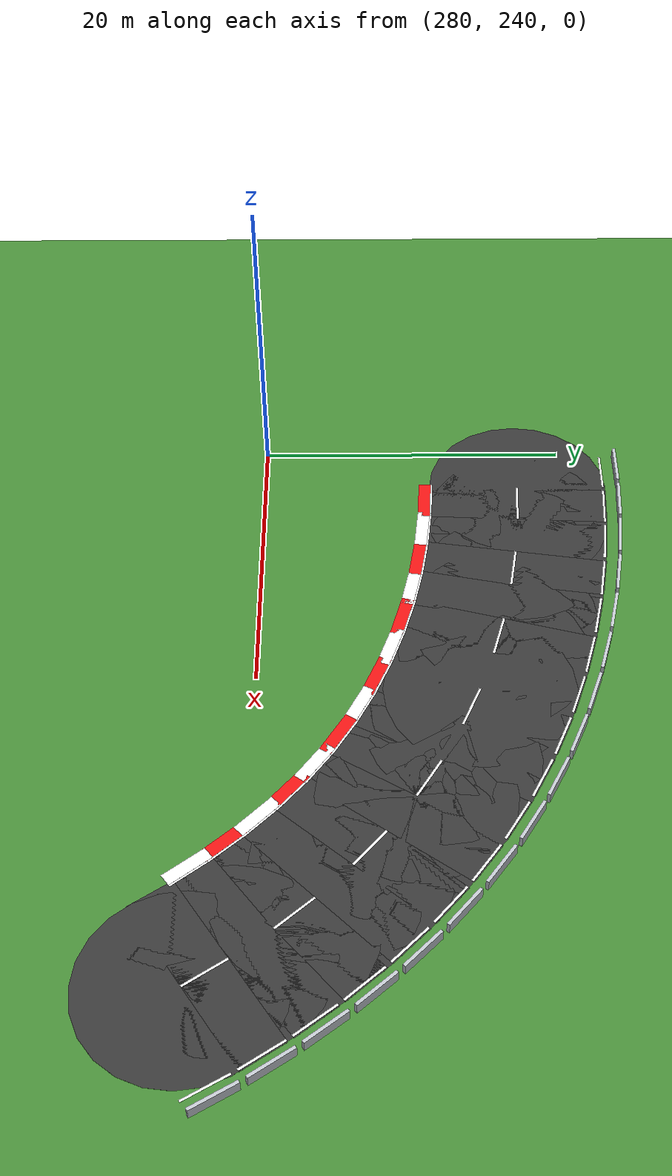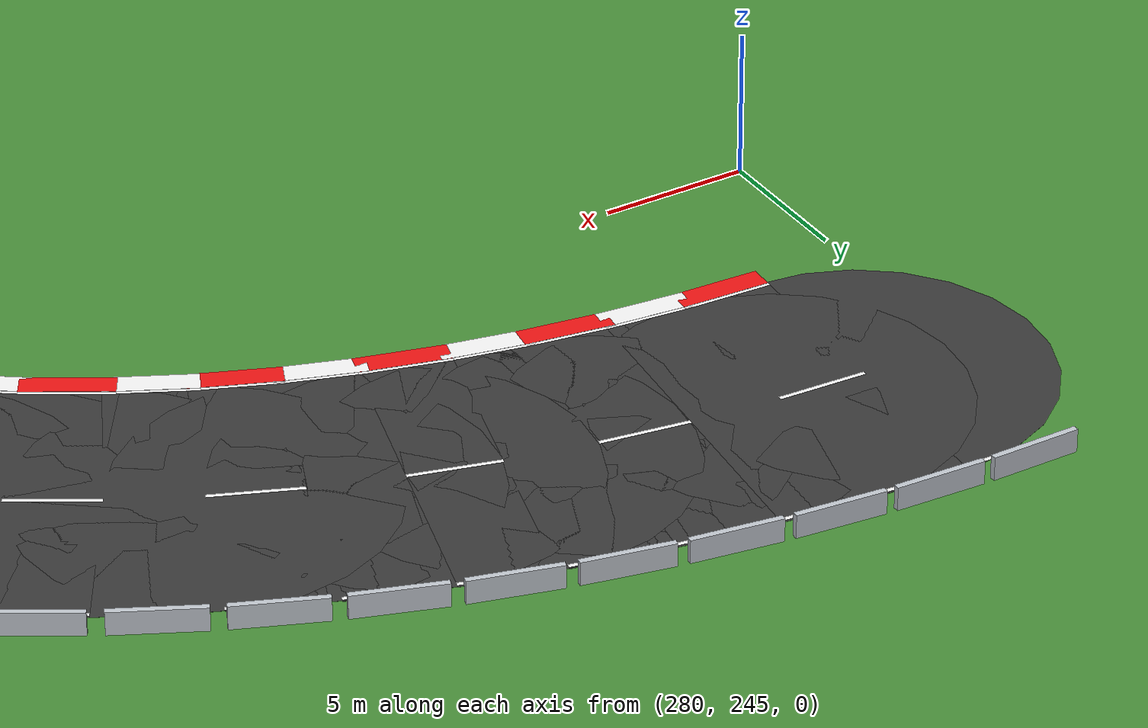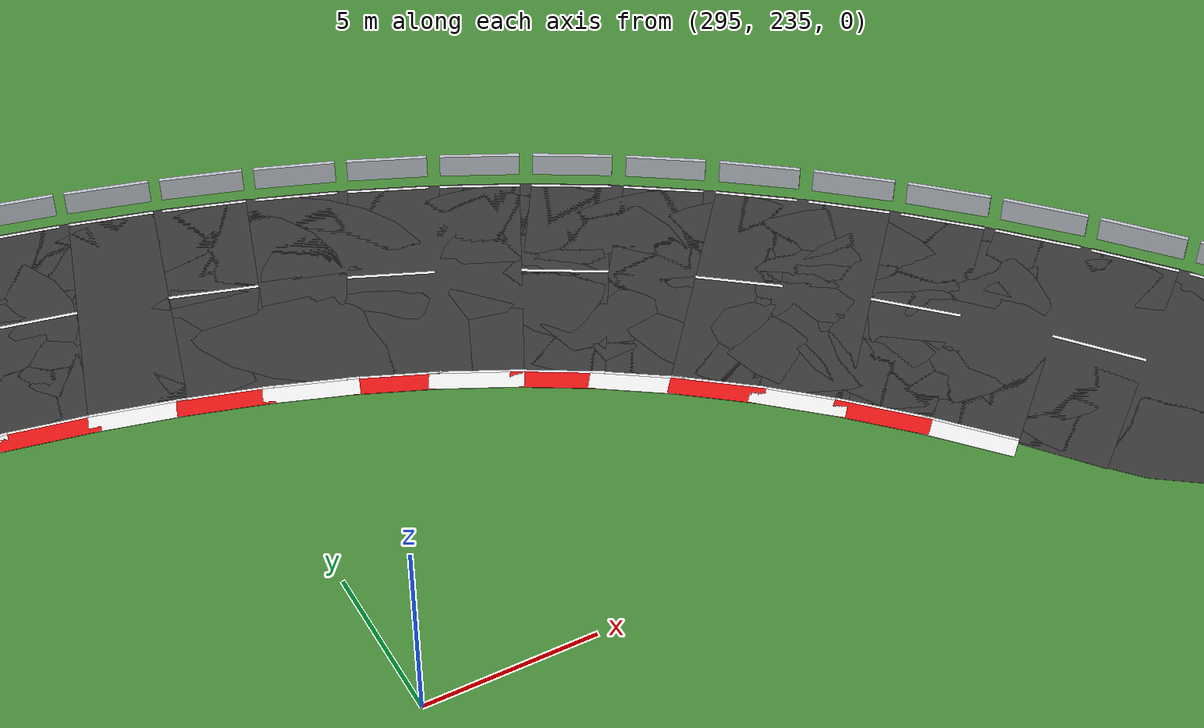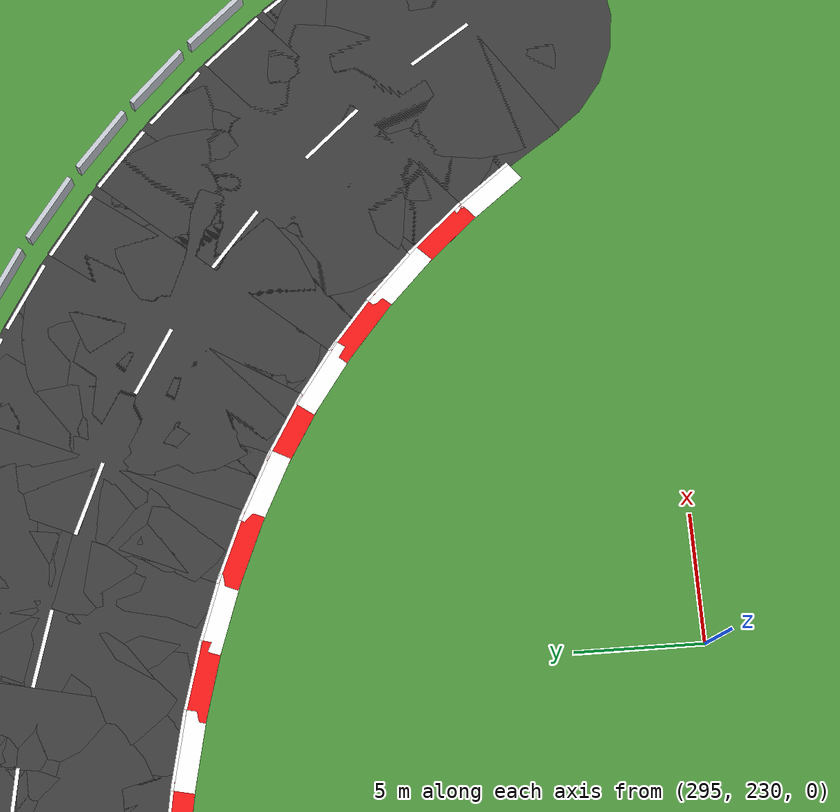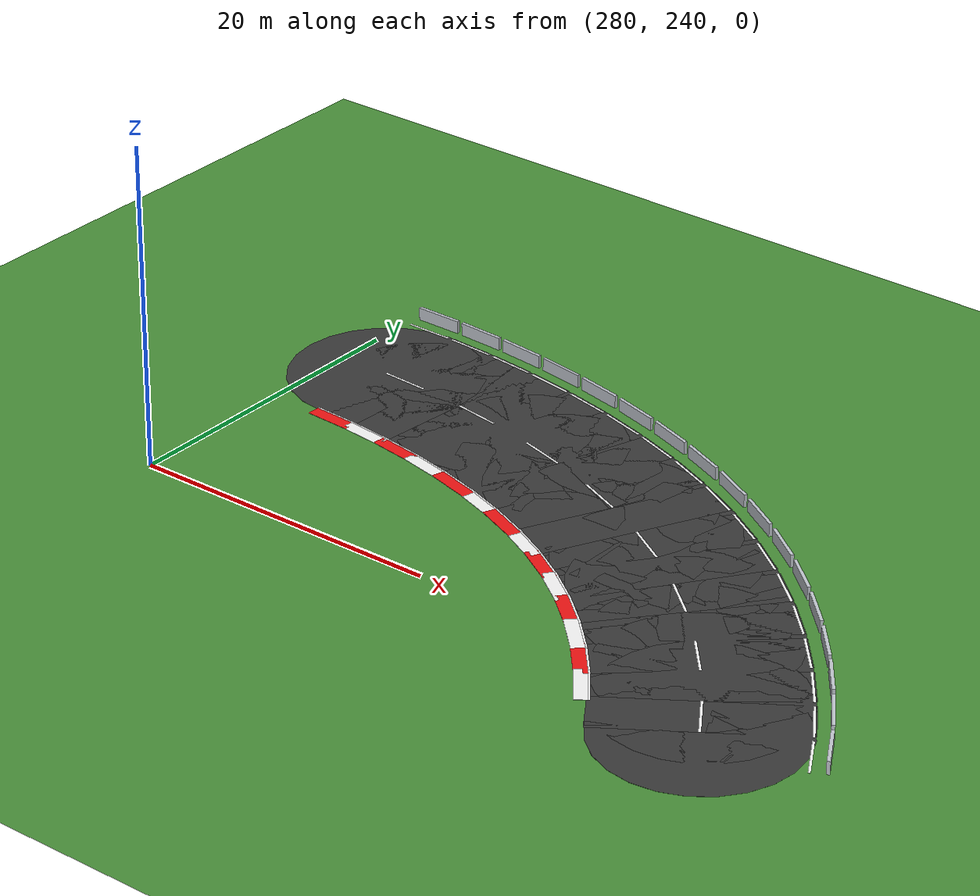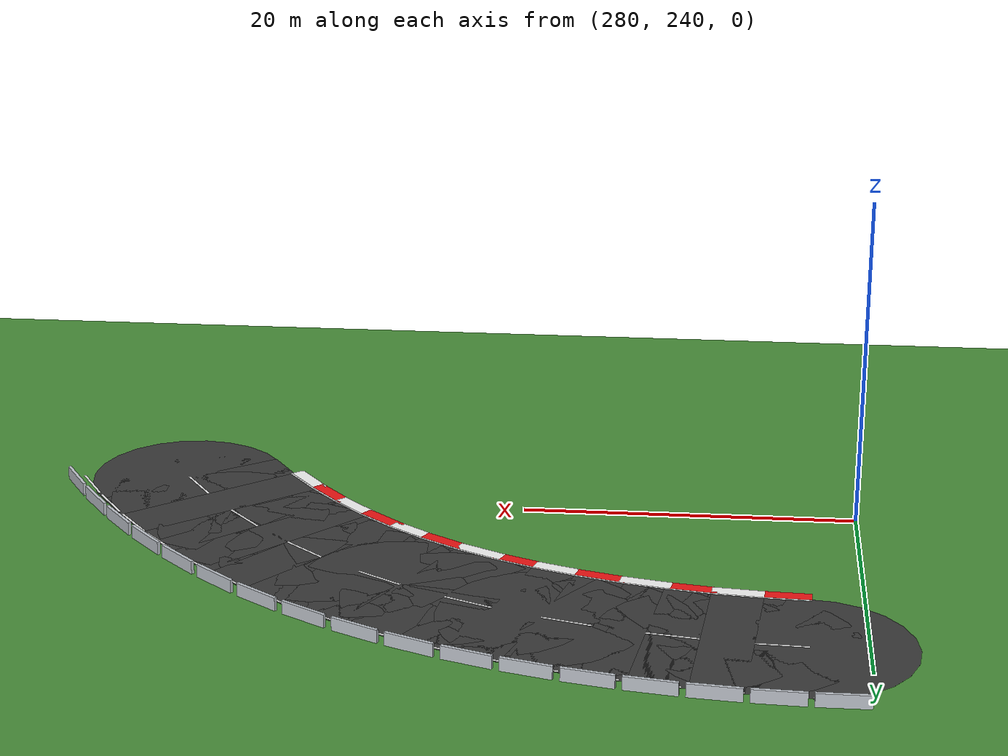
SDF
<sdf version="1.6">
 <world name="sem_silesia_ring_2026">
  <model name="ground_plane">
   <static>true</static>
   <link name="link">
    <collision name="collision">
     <geometry><plane><normal>0 0 1</normal><size>1200 1200</size></plane></geometry>
     <surface><friction><ode><mu>0.6</mu><mu2>0.6</mu2></ode></friction></surface>
    </collision>
    <visual name="visual">
     <geometry><plane><normal>0 0 1</normal><size>1200 1200</size></plane></geometry>
     <material><ambient>0.28 0.55 0.22 1</ambient><diffuse>0.28 0.55 0.22 1</diffuse></material>
    </visual>
   </link>
  </model>
  <model name="wl_R_s197">
   <static>true</static>
   <pose>327.0546 238.4590 0.0070 0 0 2.1022</pose>
   <link name="link">
    <visual name="v">
     <geometry><box><size>3.0021 0.1500 0.0080</size></box></geometry>
     <material><ambient>0.95 0.95 0.95 1</ambient><diffuse>0.95 0.95 0.95 1</diffuse></material>
    </visual>
   </link>
  </model>
  <model name="arm_outR_197">
   <static>true</static>
   <pose>327.8736 238.9404 0.4000 0 0 2.1022</pose>
   <link name="link">
    <visual name="v">
     <geometry><box><size>3.0021 0.2000 0.8000</size></box></geometry>
     <material><ambient>0.75 0.77 0.80 1</ambient><diffuse>0.75 0.77 0.80 1</diffuse></material>
    </visual>
    <collision name="c">
     <geometry><box><size>3.0021 0.2000 0.8000</size></box></geometry>
     <surface><friction><ode><mu>0.8</mu><mu2>0.8</mu2></ode></friction></surface>
    </collision>
   </link>
  </model>
  <model name="road_s198">
   <static>true</static>
   <pose>320.4113 238.0326 0.0030 0 0 2.1643</pose>
   <link name="link">
    <visual name="v">
     <geometry><box><size>3.0020 12.0000 0.0060</size></box></geometry>
     <material><ambient>0.22 0.22 0.22 1</ambient><diffuse>0.22 0.22 0.22 1</diffuse></material>
    </visual>
    <collision name="c">
     <geometry><box><size>3.0020 12.0000 0.0060</size></box></geometry>
     <surface><friction><ode><mu>0.9</mu><mu2>0.9</mu2></ode></friction></surface>
    </collision>
   </link>
  </model>
  <model name="road_jnt198">
   <static>true</static>
   <pose>321.2508 236.7883 0.0030 0 0 0</pose>
   <link name="link">
    <visual name="v">
     <geometry><cylinder><radius>6.0000</radius><length>0.0060</length></cylinder></geometry>
     <material><ambient>0.22 0.22 0.22 1</ambient><diffuse>0.22 0.22 0.22 1</diffuse></material>
    </visual>
    <collision name="c">
     <geometry><cylinder><radius>6.0000</radius><length>0.0060</length></cylinder></geometry>
     <surface><friction><ode><mu>0.9</mu><mu2>0.9</mu2></ode></friction></surface>
    </collision>
   </link>
  </model>
  <model name="wl_R_s198">
   <static>true</static>
   <pose>325.2608 241.3045 0.0070 0 0 2.1643</pose>
   <link name="link">
    <visual name="v">
     <geometry><box><size>3.0020 0.1500 0.0080</size></box></geometry>
     <material><ambient>0.95 0.95 0.95 1</ambient><diffuse>0.95 0.95 0.95 1</diffuse></material>
    </visual>
   </link>
  </model>
  <model name="cd_s198">
   <static>true</static>
   <pose>320.4113 238.0326 0.0070 0 0 2.1643</pose>
   <link name="link">
    <visual name="v">
     <geometry><box><size>3.0020 0.1500 0.0080</size></box></geometry>
     <material><ambient>0.95 0.95 0.95 1</ambient><diffuse>0.95 0.95 0.95 1</diffuse></material>
    </visual>
   </link>
  </model>
  <model name="arm_outR_198">
   <static>true</static>
   <pose>326.0483 241.8358 0.4000 0 0 2.1643</pose>
   <link name="link">
    <visual name="v">
     <geometry><box><size>3.0020 0.2000 0.8000</size></box></geometry>
     <material><ambient>0.75 0.77 0.80 1</ambient><diffuse>0.75 0.77 0.80 1</diffuse></material>
    </visual>
    <collision name="c">
     <geometry><box><size>3.0020 0.2000 0.8000</size></box></geometry>
     <surface><friction><ode><mu>0.8</mu><mu2>0.8</mu2></ode></friction></surface>
    </collision>
   </link>
  </model>
  <model name="road_s199">
   <static>true</static>
   <pose>318.6545 240.4650 0.0030 0 0 2.2283</pose>
   <link name="link">
    <visual name="v">
     <geometry><box><size>3.0020 12.0000 0.0060</size></box></geometry>
     <material><ambient>0.22 0.22 0.22 1</ambient><diffuse>0.22 0.22 0.22 1</diffuse></material>
    </visual>
    <collision name="c">
     <geometry><box><size>3.0020 12.0000 0.0060</size></box></geometry>
     <surface><friction><ode><mu>0.9</mu><mu2>0.9</mu2></ode></friction></surface>
    </collision>
   </link>
  </model>
  <model name="road_jnt199">
   <static>true</static>
   <pose>319.5718 239.2769 0.0030 0 0 0</pose>
   <link name="link">
    <visual name="v">
     <geometry><cylinder><radius>6.0000</radius><length>0.0060</length></cylinder></geometry>
     <material><ambient>0.22 0.22 0.22 1</ambient><diffuse>0.22 0.22 0.22 1</diffuse></material>
    </visual>
    <collision name="c">
     <geometry><cylinder><radius>6.0000</radius><length>0.0060</length></cylinder></geometry>
     <surface><friction><ode><mu>0.9</mu><mu2>0.9</mu2></ode></friction></surface>
    </collision>
   </link>
  </model>
  <model name="wl_L_s199">
   <static>true</static>
   <pose>314.0240 236.8899 0.0070 0 0 2.2283</pose>
   <link name="link">
    <visual name="v">
     <geometry><box><size>3.0020 0.1500 0.0080</size></box></geometry>
     <material><ambient>0.95 0.95 0.95 1</ambient><diffuse>0.95 0.95 0.95 1</diffuse></material>
    </visual>
   </link>
  </model>
  <model name="wl_R_s199">
   <static>true</static>
   <pose>323.2849 244.0401 0.0070 0 0 2.2283</pose>
   <link name="link">
    <visual name="v">
     <geometry><box><size>3.0020 0.1500 0.0080</size></box></geometry>
     <material><ambient>0.95 0.95 0.95 1</ambient><diffuse>0.95 0.95 0.95 1</diffuse></material>
    </visual>
   </link>
  </model>
  <model name="kerb_L_199">
   <static>true</static>
   <pose>313.6678 236.6149 0.0120 0 0 2.2283</pose>
   <link name="link">
    <visual name="v">
     <geometry><box><size>3.0020 0.8000 0.0160</size></box></geometry>
     <material><ambient>0.95 0.95 0.95 1</ambient><diffuse>0.95 0.95 0.95 1</diffuse></material>
    </visual>
   </link>
  </model>
  <model name="arm_outR_199">
   <static>true</static>
   <pose>324.0369 244.6207 0.4000 0 0 2.2283</pose>
   <link name="link">
    <visual name="v">
     <geometry><box><size>3.0020 0.2000 0.8000</size></box></geometry>
     <material><ambient>0.75 0.77 0.80 1</ambient><diffuse>0.75 0.77 0.80 1</diffuse></material>
    </visual>
    <collision name="c">
     <geometry><box><size>3.0020 0.2000 0.8000</size></box></geometry>
     <surface><friction><ode><mu>0.8</mu><mu2>0.8</mu2></ode></friction></surface>
    </collision>
   </link>
  </model>
  <model name="road_s200">
   <static>true</static>
   <pose>316.7428 242.7775 0.0030 0 0 2.2949</pose>
   <link name="link">
    <visual name="v">
     <geometry><box><size>3.0020 12.0000 0.0060</size></box></geometry>
     <material><ambient>0.22 0.22 0.22 1</ambient><diffuse>0.22 0.22 0.22 1</diffuse></material>
    </visual>
    <collision name="c">
     <geometry><box><size>3.0020 12.0000 0.0060</size></box></geometry>
     <surface><friction><ode><mu>0.9</mu><mu2>0.9</mu2></ode></friction></surface>
    </collision>
   </link>
  </model>
  <model name="road_jnt200">
   <static>true</static>
   <pose>317.7372 241.6531 0.0030 0 0 0</pose>
   <link name="link">
    <visual name="v">
     <geometry><cylinder><radius>6.0000</radius><length>0.0060</length></cylinder></geometry>
     <material><ambient>0.22 0.22 0.22 1</ambient><diffuse>0.22 0.22 0.22 1</diffuse></material>
    </visual>
    <collision name="c">
     <geometry><cylinder><radius>6.0000</radius><length>0.0060</length></cylinder></geometry>
     <surface><friction><ode><mu>0.9</mu><mu2>0.9</mu2></ode></friction></surface>
    </collision>
   </link>
  </model>
  <model name="wl_L_s200">
   <static>true</static>
   <pose>312.3606 238.9021 0.0070 0 0 2.2949</pose>
   <link name="link">
    <visual name="v">
     <geometry><box><size>3.0020 0.1500 0.0080</size></box></geometry>
     <material><ambient>0.95 0.95 0.95 1</ambient><diffuse>0.95 0.95 0.95 1</diffuse></material>
    </visual>
   </link>
  </model>
  <model name="wl_R_s200">
   <static>true</static>
   <pose>321.1250 246.6529 0.0070 0 0 2.2949</pose>
   <link name="link">
    <visual name="v">
     <geometry><box><size>3.0020 0.1500 0.0080</size></box></geometry>
     <material><ambient>0.95 0.95 0.95 1</ambient><diffuse>0.95 0.95 0.95 1</diffuse></material>
    </visual>
   </link>
  </model>
  <model name="cd_s200">
   <static>true</static>
   <pose>316.7428 242.7775 0.0070 0 0 2.2949</pose>
   <link name="link">
    <visual name="v">
     <geometry><box><size>3.0020 0.1500 0.0080</size></box></geometry>
     <material><ambient>0.95 0.95 0.95 1</ambient><diffuse>0.95 0.95 0.95 1</diffuse></material>
    </visual>
   </link>
  </model>
  <model name="kerb_L_200">
   <static>true</static>
   <pose>312.0236 238.6039 0.0120 0 0 2.2949</pose>
   <link name="link">
    <visual name="v">
     <geometry><box><size>3.0020 0.8000 0.0160</size></box></geometry>
     <material><ambient>0.92 0.08 0.08 1</ambient><diffuse>0.92 0.08 0.08 1</diffuse></material>
    </visual>
   </link>
  </model>
  <model name="arm_outR_200">
   <static>true</static>
   <pose>321.8366 247.2823 0.4000 0 0 2.2949</pose>
   <link name="link">
    <visual name="v">
     <geometry><box><size>3.0020 0.2000 0.8000</size></box></geometry>
     <material><ambient>0.75 0.77 0.80 1</ambient><diffuse>0.75 0.77 0.80 1</diffuse></material>
    </visual>
    <collision name="c">
     <geometry><box><size>3.0020 0.2000 0.8000</size></box></geometry>
     <surface><friction><ode><mu>0.8</mu><mu2>0.8</mu2></ode></friction></surface>
    </collision>
   </link>
  </model>
  <model name="road_s201">
   <static>true</static>
   <pose>314.6779 244.9538 0.0030 0 0 2.3650</pose>
   <link name="link">
    <visual name="v">
     <geometry><box><size>3.0019 12.0000 0.0060</size></box></geometry>
     <material><ambient>0.22 0.22 0.22 1</ambient><diffuse>0.22 0.22 0.22 1</diffuse></material>
    </visual>
    <collision name="c">
     <geometry><box><size>3.0019 12.0000 0.0060</size></box></geometry>
     <surface><friction><ode><mu>0.9</mu><mu2>0.9</mu2></ode></friction></surface>
    </collision>
   </link>
  </model>
  <model name="road_jnt201">
   <static>true</static>
   <pose>315.7485 243.9019 0.0030 0 0 0</pose>
   <link name="link">
    <visual name="v">
     <geometry><cylinder><radius>6.0000</radius><length>0.0060</length></cylinder></geometry>
     <material><ambient>0.22 0.22 0.22 1</ambient><diffuse>0.22 0.22 0.22 1</diffuse></material>
    </visual>
    <collision name="c">
     <geometry><cylinder><radius>6.0000</radius><length>0.0060</length></cylinder></geometry>
     <surface><friction><ode><mu>0.9</mu><mu2>0.9</mu2></ode></friction></surface>
    </collision>
   </link>
  </model>
  <model name="wl_L_s201">
   <static>true</static>
   <pose>310.5777 240.7812 0.0070 0 0 2.3650</pose>
   <link name="link">
    <visual name="v">
     <geometry><box><size>3.0019 0.1500 0.0080</size></box></geometry>
     <material><ambient>0.95 0.95 0.95 1</ambient><diffuse>0.95 0.95 0.95 1</diffuse></material>
    </visual>
   </link>
  </model>
  <model name="wl_R_s201">
   <static>true</static>
   <pose>318.7781 249.1265 0.0070 0 0 2.3650</pose>
   <link name="link">
    <visual name="v">
     <geometry><box><size>3.0019 0.1500 0.0080</size></box></geometry>
     <material><ambient>0.95 0.95 0.95 1</ambient><diffuse>0.95 0.95 0.95 1</diffuse></material>
    </visual>
   </link>
  </model>
  <model name="kerb_L_201">
   <static>true</static>
   <pose>310.2623 240.4602 0.0120 0 0 2.3650</pose>
   <link name="link">
    <visual name="v">
     <geometry><box><size>3.0019 0.8000 0.0160</size></box></geometry>
     <material><ambient>0.95 0.95 0.95 1</ambient><diffuse>0.95 0.95 0.95 1</diffuse></material>
    </visual>
   </link>
  </model>
  <model name="arm_outR_201">
   <static>true</static>
   <pose>319.4439 249.8041 0.4000 0 0 2.3650</pose>
   <link name="link">
    <visual name="v">
     <geometry><box><size>3.0019 0.2000 0.8000</size></box></geometry>
     <material><ambient>0.75 0.77 0.80 1</ambient><diffuse>0.75 0.77 0.80 1</diffuse></material>
    </visual>
    <collision name="c">
     <geometry><box><size>3.0019 0.2000 0.8000</size></box></geometry>
     <surface><friction><ode><mu>0.8</mu><mu2>0.8</mu2></ode></friction></surface>
    </collision>
   </link>
  </model>
  <model name="road_s202">
   <static>true</static>
   <pose>312.4618 246.9756 0.0030 0 0 2.4391</pose>
   <link name="link">
    <visual name="v">
     <geometry><box><size>3.0018 12.0000 0.0060</size></box></geometry>
     <material><ambient>0.22 0.22 0.22 1</ambient><diffuse>0.22 0.22 0.22 1</diffuse></material>
    </visual>
    <collision name="c">
     <geometry><box><size>3.0018 12.0000 0.0060</size></box></geometry>
     <surface><friction><ode><mu>0.9</mu><mu2>0.9</mu2></ode></friction></surface>
    </collision>
   </link>
  </model>
  <model name="road_jnt202">
   <static>true</static>
   <pose>313.6073 246.0058 0.0030 0 0 0</pose>
   <link name="link">
    <visual name="v">
     <geometry><cylinder><radius>6.0000</radius><length>0.0060</length></cylinder></geometry>
     <material><ambient>0.22 0.22 0.22 1</ambient><diffuse>0.22 0.22 0.22 1</diffuse></material>
    </visual>
    <collision name="c">
     <geometry><cylinder><radius>6.0000</radius><length>0.0060</length></cylinder></geometry>
     <surface><friction><ode><mu>0.9</mu><mu2>0.9</mu2></ode></friction></surface>
    </collision>
   </link>
  </model>
  <model name="wl_L_s202">
   <static>true</static>
   <pose>308.6820 242.5107 0.0070 0 0 2.4391</pose>
   <link name="link">
    <visual name="v">
     <geometry><box><size>3.0018 0.1500 0.0080</size></box></geometry>
     <material><ambient>0.95 0.95 0.95 1</ambient><diffuse>0.95 0.95 0.95 1</diffuse></material>
    </visual>
   </link>
  </model>
  <model name="wl_R_s202">
   <static>true</static>
   <pose>316.2415 251.4405 0.0070 0 0 2.4391</pose>
   <link name="link">
    <visual name="v">
     <geometry><box><size>3.0018 0.1500 0.0080</size></box></geometry>
     <material><ambient>0.95 0.95 0.95 1</ambient><diffuse>0.95 0.95 0.95 1</diffuse></material>
    </visual>
   </link>
  </model>
  <model name="cd_s202">
   <static>true</static>
   <pose>312.4618 246.9756 0.0070 0 0 2.4391</pose>
   <link name="link">
    <visual name="v">
     <geometry><box><size>3.0018 0.1500 0.0080</size></box></geometry>
     <material><ambient>0.95 0.95 0.95 1</ambient><diffuse>0.95 0.95 0.95 1</diffuse></material>
    </visual>
   </link>
  </model>
  <model name="kerb_L_202">
   <static>true</static>
   <pose>308.3912 242.1672 0.0120 0 0 2.4391</pose>
   <link name="link">
    <visual name="v">
     <geometry><box><size>3.0018 0.8000 0.0160</size></box></geometry>
     <material><ambient>0.92 0.08 0.08 1</ambient><diffuse>0.92 0.08 0.08 1</diffuse></material>
    </visual>
   </link>
  </model>
  <model name="arm_outR_202">
   <static>true</static>
   <pose>316.8554 252.1656 0.4000 0 0 2.4391</pose>
   <link name="link">
    <visual name="v">
     <geometry><box><size>3.0018 0.2000 0.8000</size></box></geometry>
     <material><ambient>0.75 0.77 0.80 1</ambient><diffuse>0.75 0.77 0.80 1</diffuse></material>
    </visual>
    <collision name="c">
     <geometry><box><size>3.0018 0.2000 0.8000</size></box></geometry>
     <surface><friction><ode><mu>0.8</mu><mu2>0.8</mu2></ode></friction></surface>
    </collision>
   </link>
  </model>
  <model name="road_s203">
   <static>true</static>
   <pose>310.0981 248.8221 0.0030 0 0 2.5177</pose>
   <link name="link">
    <visual name="v">
     <geometry><box><size>3.0017 12.0000 0.0060</size></box></geometry>
     <material><ambient>0.22 0.22 0.22 1</ambient><diffuse>0.22 0.22 0.22 1</diffuse></material>
    </visual>
    <collision name="c">
     <geometry><box><size>3.0017 12.0000 0.0060</size></box></geometry>
     <surface><friction><ode><mu>0.9</mu><mu2>0.9</mu2></ode></friction></surface>
    </collision>
   </link>
  </model>
  <model name="road_jnt203">
   <static>true</static>
   <pose>311.3162 247.9454 0.0030 0 0 0</pose>
   <link name="link">
    <visual name="v">
     <geometry><cylinder><radius>6.0000</radius><length>0.0060</length></cylinder></geometry>
     <material><ambient>0.22 0.22 0.22 1</ambient><diffuse>0.22 0.22 0.22 1</diffuse></material>
    </visual>
    <collision name="c">
     <geometry><cylinder><radius>6.0000</radius><length>0.0060</length></cylinder></geometry>
     <surface><friction><ode><mu>0.9</mu><mu2>0.9</mu2></ode></friction></surface>
    </collision>
   </link>
  </model>
  <model name="wl_L_s203">
   <static>true</static>
   <pose>306.6807 244.0740 0.0070 0 0 2.5177</pose>
   <link name="link">
    <visual name="v">
     <geometry><box><size>3.0017 0.1500 0.0080</size></box></geometry>
     <material><ambient>0.95 0.95 0.95 1</ambient><diffuse>0.95 0.95 0.95 1</diffuse></material>
    </visual>
   </link>
  </model>
  <model name="wl_R_s203">
   <static>true</static>
   <pose>313.5154 253.5702 0.0070 0 0 2.5177</pose>
   <link name="link">
    <visual name="v">
     <geometry><box><size>3.0017 0.1500 0.0080</size></box></geometry>
     <material><ambient>0.95 0.95 0.95 1</ambient><diffuse>0.95 0.95 0.95 1</diffuse></material>
    </visual>
   </link>
  </model>
  <model name="kerb_L_203">
   <static>true</static>
   <pose>306.4178 243.7088 0.0120 0 0 2.5177</pose>
   <link name="link">
    <visual name="v">
     <geometry><box><size>3.0017 0.8000 0.0160</size></box></geometry>
     <material><ambient>0.95 0.95 0.95 1</ambient><diffuse>0.95 0.95 0.95 1</diffuse></material>
    </visual>
   </link>
  </model>
  <model name="arm_outR_203">
   <static>true</static>
   <pose>314.0704 254.3412 0.4000 0 0 2.5177</pose>
   <link name="link">
    <visual name="v">
     <geometry><box><size>3.0017 0.2000 0.8000</size></box></geometry>
     <material><ambient>0.75 0.77 0.80 1</ambient><diffuse>0.75 0.77 0.80 1</diffuse></material>
    </visual>
    <collision name="c">
     <geometry><box><size>3.0017 0.2000 0.8000</size></box></geometry>
     <surface><friction><ode><mu>0.8</mu><mu2>0.8</mu2></ode></friction></surface>
    </collision>
   </link>
  </model>
  <model name="road_s204">
   <static>true</static>
   <pose>307.5961 250.4764 0.0030 0 0 2.5970</pose>
   <link name="link">
    <visual name="v">
     <geometry><box><size>3.0018 12.0000 0.0060</size></box></geometry>
     <material><ambient>0.22 0.22 0.22 1</ambient><diffuse>0.22 0.22 0.22 1</diffuse></material>
    </visual>
    <collision name="c">
     <geometry><box><size>3.0018 12.0000 0.0060</size></box></geometry>
     <surface><friction><ode><mu>0.9</mu><mu2>0.9</mu2></ode></friction></surface>
    </collision>
   </link>
  </model>
  <model name="road_jnt204">
   <static>true</static>
   <pose>308.8799 249.6989 0.0030 0 0 0</pose>
   <link name="link">
    <visual name="v">
     <geometry><cylinder><radius>6.0000</radius><length>0.0060</length></cylinder></geometry>
     <material><ambient>0.22 0.22 0.22 1</ambient><diffuse>0.22 0.22 0.22 1</diffuse></material>
    </visual>
    <collision name="c">
     <geometry><cylinder><radius>6.0000</radius><length>0.0060</length></cylinder></geometry>
     <surface><friction><ode><mu>0.9</mu><mu2>0.9</mu2></ode></friction></surface>
    </collision>
   </link>
  </model>
  <model name="wl_L_s204">
   <static>true</static>
   <pose>304.5656 245.4725 0.0070 0 0 2.5970</pose>
   <link name="link">
    <visual name="v">
     <geometry><box><size>3.0018 0.1500 0.0080</size></box></geometry>
     <material><ambient>0.95 0.95 0.95 1</ambient><diffuse>0.95 0.95 0.95 1</diffuse></material>
    </visual>
   </link>
  </model>
  <model name="wl_R_s204">
   <static>true</static>
   <pose>310.6266 255.4802 0.0070 0 0 2.5970</pose>
   <link name="link">
    <visual name="v">
     <geometry><box><size>3.0018 0.1500 0.0080</size></box></geometry>
     <material><ambient>0.95 0.95 0.95 1</ambient><diffuse>0.95 0.95 0.95 1</diffuse></material>
    </visual>
   </link>
  </model>
  <model name="cd_s204">
   <static>true</static>
   <pose>307.5961 250.4764 0.0070 0 0 2.5970</pose>
   <link name="link">
    <visual name="v">
     <geometry><box><size>3.0018 0.1500 0.0080</size></box></geometry>
     <material><ambient>0.95 0.95 0.95 1</ambient><diffuse>0.95 0.95 0.95 1</diffuse></material>
    </visual>
   </link>
  </model>
  <model name="kerb_L_204">
   <static>true</static>
   <pose>304.3325 245.0876 0.0120 0 0 2.5970</pose>
   <link name="link">
    <visual name="v">
     <geometry><box><size>3.0018 0.8000 0.0160</size></box></geometry>
     <material><ambient>0.92 0.08 0.08 1</ambient><diffuse>0.92 0.08 0.08 1</diffuse></material>
    </visual>
   </link>
  </model>
  <model name="arm_outR_204">
   <static>true</static>
   <pose>311.1188 256.2928 0.4000 0 0 2.5970</pose>
   <link name="link">
    <visual name="v">
     <geometry><box><size>3.0018 0.2000 0.8000</size></box></geometry>
     <material><ambient>0.75 0.77 0.80 1</ambient><diffuse>0.75 0.77 0.80 1</diffuse></material>
    </visual>
    <collision name="c">
     <geometry><box><size>3.0018 0.2000 0.8000</size></box></geometry>
     <surface><friction><ode><mu>0.8</mu><mu2>0.8</mu2></ode></friction></surface>
    </collision>
   </link>
  </model>
  <model name="road_s205">
   <static>true</static>
   <pose>304.9737 251.9328 0.0030 0 0 2.6722</pose>
   <link name="link">
    <visual name="v">
     <geometry><box><size>3.0019 12.0000 0.0060</size></box></geometry>
     <material><ambient>0.22 0.22 0.22 1</ambient><diffuse>0.22 0.22 0.22 1</diffuse></material>
    </visual>
    <collision name="c">
     <geometry><box><size>3.0019 12.0000 0.0060</size></box></geometry>
     <surface><friction><ode><mu>0.9</mu><mu2>0.9</mu2></ode></friction></surface>
    </collision>
   </link>
  </model>
  <model name="road_jnt205">
   <static>true</static>
   <pose>306.3123 251.2539 0.0030 0 0 0</pose>
   <link name="link">
    <visual name="v">
     <geometry><cylinder><radius>6.0000</radius><length>0.0060</length></cylinder></geometry>
     <material><ambient>0.22 0.22 0.22 1</ambient><diffuse>0.22 0.22 0.22 1</diffuse></material>
    </visual>
    <collision name="c">
     <geometry><cylinder><radius>6.0000</radius><length>0.0060</length></cylinder></geometry>
     <surface><friction><ode><mu>0.9</mu><mu2>0.9</mu2></ode></friction></surface>
    </collision>
   </link>
  </model>
  <model name="wl_L_s205">
   <static>true</static>
   <pose>302.3275 246.7156 0.0070 0 0 2.6722</pose>
   <link name="link">
    <visual name="v">
     <geometry><box><size>3.0019 0.1500 0.0080</size></box></geometry>
     <material><ambient>0.95 0.95 0.95 1</ambient><diffuse>0.95 0.95 0.95 1</diffuse></material>
    </visual>
   </link>
  </model>
  <model name="wl_R_s205">
   <static>true</static>
   <pose>307.6199 257.1501 0.0070 0 0 2.6722</pose>
   <link name="link">
    <visual name="v">
     <geometry><box><size>3.0019 0.1500 0.0080</size></box></geometry>
     <material><ambient>0.95 0.95 0.95 1</ambient><diffuse>0.95 0.95 0.95 1</diffuse></material>
    </visual>
   </link>
  </model>
  <model name="kerb_L_205">
   <static>true</static>
   <pose>302.1239 246.3142 0.0120 0 0 2.6722</pose>
   <link name="link">
    <visual name="v">
     <geometry><box><size>3.0019 0.8000 0.0160</size></box></geometry>
     <material><ambient>0.95 0.95 0.95 1</ambient><diffuse>0.95 0.95 0.95 1</diffuse></material>
    </visual>
   </link>
  </model>
  <model name="arm_outR_205">
   <static>true</static>
   <pose>308.0497 257.9974 0.4000 0 0 2.6722</pose>
   <link name="link">
    <visual name="v">
     <geometry><box><size>3.0019 0.2000 0.8000</size></box></geometry>
     <material><ambient>0.75 0.77 0.80 1</ambient><diffuse>0.75 0.77 0.80 1</diffuse></material>
    </visual>
    <collision name="c">
     <geometry><box><size>3.0019 0.2000 0.8000</size></box></geometry>
     <surface><friction><ode><mu>0.8</mu><mu2>0.8</mu2></ode></friction></surface>
    </collision>
   </link>
  </model>
  <model name="road_s206">
   <static>true</static>
   <pose>302.2519 253.1945 0.0030 0 0 2.7429</pose>
   <link name="link">
    <visual name="v">
     <geometry><box><size>3.0020 12.0000 0.0060</size></box></geometry>
     <material><ambient>0.22 0.22 0.22 1</ambient><diffuse>0.22 0.22 0.22 1</diffuse></material>
    </visual>
    <collision name="c">
     <geometry><box><size>3.0020 12.0000 0.0060</size></box></geometry>
     <surface><friction><ode><mu>0.9</mu><mu2>0.9</mu2></ode></friction></surface>
    </collision>
   </link>
  </model>
  <model name="road_jnt206">
   <static>true</static>
   <pose>303.6351 252.6118 0.0030 0 0 0</pose>
   <link name="link">
    <visual name="v">
     <geometry><cylinder><radius>6.0000</radius><length>0.0060</length></cylinder></geometry>
     <material><ambient>0.22 0.22 0.22 1</ambient><diffuse>0.22 0.22 0.22 1</diffuse></material>
    </visual>
    <collision name="c">
     <geometry><cylinder><radius>6.0000</radius><length>0.0060</length></cylinder></geometry>
     <surface><friction><ode><mu>0.9</mu><mu2>0.9</mu2></ode></friction></surface>
    </collision>
   </link>
  </model>
  <model name="wl_L_s206">
   <static>true</static>
   <pose>299.9807 247.8034 0.0070 0 0 2.7429</pose>
   <link name="link">
    <visual name="v">
     <geometry><box><size>3.0020 0.1500 0.0080</size></box></geometry>
     <material><ambient>0.95 0.95 0.95 1</ambient><diffuse>0.95 0.95 0.95 1</diffuse></material>
    </visual>
   </link>
  </model>
  <model name="wl_R_s206">
   <static>true</static>
   <pose>304.5231 258.5856 0.0070 0 0 2.7429</pose>
   <link name="link">
    <visual name="v">
     <geometry><box><size>3.0020 0.1500 0.0080</size></box></geometry>
     <material><ambient>0.95 0.95 0.95 1</ambient><diffuse>0.95 0.95 0.95 1</diffuse></material>
    </visual>
   </link>
  </model>
  <model name="cd_s206">
   <static>true</static>
   <pose>302.2519 253.1945 0.0070 0 0 2.7429</pose>
   <link name="link">
    <visual name="v">
     <geometry><box><size>3.0020 0.1500 0.0080</size></box></geometry>
     <material><ambient>0.95 0.95 0.95 1</ambient><diffuse>0.95 0.95 0.95 1</diffuse></material>
    </visual>
   </link>
  </model>
  <model name="kerb_L_206">
   <static>true</static>
   <pose>299.8059 247.3887 0.0120 0 0 2.7429</pose>
   <link name="link">
    <visual name="v">
     <geometry><box><size>3.0020 0.8000 0.0160</size></box></geometry>
     <material><ambient>0.92 0.08 0.08 1</ambient><diffuse>0.92 0.08 0.08 1</diffuse></material>
    </visual>
   </link>
  </model>
  <model name="arm_outR_206">
   <static>true</static>
   <pose>304.8919 259.4611 0.4000 0 0 2.7429</pose>
   <link name="link">
    <visual name="v">
     <geometry><box><size>3.0020 0.2000 0.8000</size></box></geometry>
     <material><ambient>0.75 0.77 0.80 1</ambient><diffuse>0.75 0.77 0.80 1</diffuse></material>
    </visual>
    <collision name="c">
     <geometry><box><size>3.0020 0.2000 0.8000</size></box></geometry>
     <surface><friction><ode><mu>0.8</mu><mu2>0.8</mu2></ode></friction></surface>
    </collision>
   </link>
  </model>
  <model name="road_s207">
   <static>true</static>
   <pose>299.4498 254.2670 0.0030 0 0 2.8092</pose>
   <link name="link">
    <visual name="v">
     <geometry><box><size>3.0020 12.0000 0.0060</size></box></geometry>
     <material><ambient>0.22 0.22 0.22 1</ambient><diffuse>0.22 0.22 0.22 1</diffuse></material>
    </visual>
    <collision name="c">
     <geometry><box><size>3.0020 12.0000 0.0060</size></box></geometry>
     <surface><friction><ode><mu>0.9</mu><mu2>0.9</mu2></ode></friction></surface>
    </collision>
   </link>
  </model>
  <model name="road_jnt207">
   <static>true</static>
   <pose>300.8686 253.7773 0.0030 0 0 0</pose>
   <link name="link">
    <visual name="v">
     <geometry><cylinder><radius>6.0000</radius><length>0.0060</length></cylinder></geometry>
     <material><ambient>0.22 0.22 0.22 1</ambient><diffuse>0.22 0.22 0.22 1</diffuse></material>
    </visual>
    <collision name="c">
     <geometry><cylinder><radius>6.0000</radius><length>0.0060</length></cylinder></geometry>
     <surface><friction><ode><mu>0.9</mu><mu2>0.9</mu2></ode></friction></surface>
    </collision>
   </link>
  </model>
  <model name="wl_L_s207">
   <static>true</static>
   <pose>297.5410 248.7372 0.0070 0 0 2.8092</pose>
   <link name="link">
    <visual name="v">
     <geometry><box><size>3.0020 0.1500 0.0080</size></box></geometry>
     <material><ambient>0.95 0.95 0.95 1</ambient><diffuse>0.95 0.95 0.95 1</diffuse></material>
    </visual>
   </link>
  </model>
  <model name="wl_R_s207">
   <static>true</static>
   <pose>301.3586 259.7969 0.0070 0 0 2.8092</pose>
   <link name="link">
    <visual name="v">
     <geometry><box><size>3.0020 0.1500 0.0080</size></box></geometry>
     <material><ambient>0.95 0.95 0.95 1</ambient><diffuse>0.95 0.95 0.95 1</diffuse></material>
    </visual>
   </link>
  </model>
  <model name="kerb_L_207">
   <static>true</static>
   <pose>297.3942 248.3118 0.0120 0 0 2.8092</pose>
   <link name="link">
    <visual name="v">
     <geometry><box><size>3.0020 0.8000 0.0160</size></box></geometry>
     <material><ambient>0.95 0.95 0.95 1</ambient><diffuse>0.95 0.95 0.95 1</diffuse></material>
    </visual>
   </link>
  </model>
  <model name="arm_outR_207">
   <static>true</static>
   <pose>301.6685 260.6949 0.4000 0 0 2.8092</pose>
   <link name="link">
    <visual name="v">
     <geometry><box><size>3.0020 0.2000 0.8000</size></box></geometry>
     <material><ambient>0.75 0.77 0.80 1</ambient><diffuse>0.75 0.77 0.80 1</diffuse></material>
    </visual>
    <collision name="c">
     <geometry><box><size>3.0020 0.2000 0.8000</size></box></geometry>
     <surface><friction><ode><mu>0.8</mu><mu2>0.8</mu2></ode></friction></surface>
    </collision>
   </link>
  </model>
  <model name="road_s208">
   <static>true</static>
   <pose>296.5843 255.1572 0.0030 0 0 2.8716</pose>
   <link name="link">
    <visual name="v">
     <geometry><box><size>3.0021 12.0000 0.0060</size></box></geometry>
     <material><ambient>0.22 0.22 0.22 1</ambient><diffuse>0.22 0.22 0.22 1</diffuse></material>
    </visual>
    <collision name="c">
     <geometry><box><size>3.0021 12.0000 0.0060</size></box></geometry>
     <surface><friction><ode><mu>0.9</mu><mu2>0.9</mu2></ode></friction></surface>
    </collision>
   </link>
  </model>
  <model name="road_jnt208">
   <static>true</static>
   <pose>298.0309 254.7568 0.0030 0 0 0</pose>
   <link name="link">
    <visual name="v">
     <geometry><cylinder><radius>6.0000</radius><length>0.0060</length></cylinder></geometry>
     <material><ambient>0.22 0.22 0.22 1</ambient><diffuse>0.22 0.22 0.22 1</diffuse></material>
    </visual>
    <collision name="c">
     <geometry><cylinder><radius>6.0000</radius><length>0.0060</length></cylinder></geometry>
     <surface><friction><ode><mu>0.9</mu><mu2>0.9</mu2></ode></friction></surface>
    </collision>
   </link>
  </model>
  <model name="wl_L_s208">
   <static>true</static>
   <pose>295.0238 249.5192 0.0070 0 0 2.8716</pose>
   <link name="link">
    <visual name="v">
     <geometry><box><size>3.0021 0.1500 0.0080</size></box></geometry>
     <material><ambient>0.95 0.95 0.95 1</ambient><diffuse>0.95 0.95 0.95 1</diffuse></material>
    </visual>
   </link>
  </model>
  <model name="wl_R_s208">
   <static>true</static>
   <pose>298.1447 260.7952 0.0070 0 0 2.8716</pose>
   <link name="link">
    <visual name="v">
     <geometry><box><size>3.0021 0.1500 0.0080</size></box></geometry>
     <material><ambient>0.95 0.95 0.95 1</ambient><diffuse>0.95 0.95 0.95 1</diffuse></material>
    </visual>
   </link>
  </model>
  <model name="cd_s208">
   <static>true</static>
   <pose>296.5843 255.1572 0.0070 0 0 2.8716</pose>
   <link name="link">
    <visual name="v">
     <geometry><box><size>3.0021 0.1500 0.0080</size></box></geometry>
     <material><ambient>0.95 0.95 0.95 1</ambient><diffuse>0.95 0.95 0.95 1</diffuse></material>
    </visual>
   </link>
  </model>
  <model name="kerb_L_208">
   <static>true</static>
   <pose>294.9037 249.0855 0.0120 0 0 2.8716</pose>
   <link name="link">
    <visual name="v">
     <geometry><box><size>3.0021 0.8000 0.0160</size></box></geometry>
     <material><ambient>0.92 0.08 0.08 1</ambient><diffuse>0.92 0.08 0.08 1</diffuse></material>
    </visual>
   </link>
  </model>
  <model name="arm_outR_208">
   <static>true</static>
   <pose>298.3982 261.7108 0.4000 0 0 2.8716</pose>
   <link name="link">
    <visual name="v">
     <geometry><box><size>3.0021 0.2000 0.8000</size></box></geometry>
     <material><ambient>0.75 0.77 0.80 1</ambient><diffuse>0.75 0.77 0.80 1</diffuse></material>
    </visual>
    <collision name="c">
     <geometry><box><size>3.0021 0.2000 0.8000</size></box></geometry>
     <surface><friction><ode><mu>0.8</mu><mu2>0.8</mu2></ode></friction></surface>
    </collision>
   </link>
  </model>
  <model name="road_s209">
   <static>true</static>
   <pose>293.6699 255.8723 0.0030 0 0 2.9304</pose>
   <link name="link">
    <visual name="v">
     <geometry><box><size>3.0021 12.0000 0.0060</size></box></geometry>
     <material><ambient>0.22 0.22 0.22 1</ambient><diffuse>0.22 0.22 0.22 1</diffuse></material>
    </visual>
    <collision name="c">
     <geometry><box><size>3.0021 12.0000 0.0060</size></box></geometry>
     <surface><friction><ode><mu>0.9</mu><mu2>0.9</mu2></ode></friction></surface>
    </collision>
   </link>
  </model>
  <model name="road_jnt209">
   <static>true</static>
   <pose>295.1376 255.5576 0.0030 0 0 0</pose>
   <link name="link">
    <visual name="v">
     <geometry><cylinder><radius>6.0000</radius><length>0.0060</length></cylinder></geometry>
     <material><ambient>0.22 0.22 0.22 1</ambient><diffuse>0.22 0.22 0.22 1</diffuse></material>
    </visual>
    <collision name="c">
     <geometry><cylinder><radius>6.0000</radius><length>0.0060</length></cylinder></geometry>
     <surface><friction><ode><mu>0.9</mu><mu2>0.9</mu2></ode></friction></surface>
    </collision>
   </link>
  </model>
  <model name="wl_L_s209">
   <static>true</static>
   <pose>292.4435 250.1523 0.0070 0 0 2.9304</pose>
   <link name="link">
    <visual name="v">
     <geometry><box><size>3.0021 0.1500 0.0080</size></box></geometry>
     <material><ambient>0.95 0.95 0.95 1</ambient><diffuse>0.95 0.95 0.95 1</diffuse></material>
    </visual>
   </link>
  </model>
  <model name="wl_R_s209">
   <static>true</static>
   <pose>294.8963 261.5923 0.0070 0 0 2.9304</pose>
   <link name="link">
    <visual name="v">
     <geometry><box><size>3.0021 0.1500 0.0080</size></box></geometry>
     <material><ambient>0.95 0.95 0.95 1</ambient><diffuse>0.95 0.95 0.95 1</diffuse></material>
    </visual>
   </link>
  </model>
  <model name="kerb_L_209">
   <static>true</static>
   <pose>292.3491 249.7123 0.0120 0 0 2.9304</pose>
   <link name="link">
    <visual name="v">
     <geometry><box><size>3.0021 0.8000 0.0160</size></box></geometry>
     <material><ambient>0.95 0.95 0.95 1</ambient><diffuse>0.95 0.95 0.95 1</diffuse></material>
    </visual>
   </link>
  </model>
  <model name="arm_outR_209">
   <static>true</static>
   <pose>295.0955 262.5212 0.4000 0 0 2.9304</pose>
   <link name="link">
    <visual name="v">
     <geometry><box><size>3.0021 0.2000 0.8000</size></box></geometry>
     <material><ambient>0.75 0.77 0.80 1</ambient><diffuse>0.75 0.77 0.80 1</diffuse></material>
    </visual>
    <collision name="c">
     <geometry><box><size>3.0021 0.2000 0.8000</size></box></geometry>
     <surface><friction><ode><mu>0.8</mu><mu2>0.8</mu2></ode></friction></surface>
    </collision>
   </link>
  </model>
  <model name="road_s210">
   <static>true</static>
   <pose>290.7192 256.4194 0.0030 0 0 2.9862</pose>
   <link name="link">
    <visual name="v">
     <geometry><box><size>3.0022 12.0000 0.0060</size></box></geometry>
     <material><ambient>0.22 0.22 0.22 1</ambient><diffuse>0.22 0.22 0.22 1</diffuse></material>
    </visual>
    <collision name="c">
     <geometry><box><size>3.0022 12.0000 0.0060</size></box></geometry>
     <surface><friction><ode><mu>0.9</mu><mu2>0.9</mu2></ode></friction></surface>
    </collision>
   </link>
  </model>
  <model name="road_jnt210">
   <static>true</static>
   <pose>292.2022 256.1870 0.0030 0 0 0</pose>
   <link name="link">
    <visual name="v">
     <geometry><cylinder><radius>6.0000</radius><length>0.0060</length></cylinder></geometry>
     <material><ambient>0.22 0.22 0.22 1</ambient><diffuse>0.22 0.22 0.22 1</diffuse></material>
    </visual>
    <collision name="c">
     <geometry><cylinder><radius>6.0000</radius><length>0.0060</length></cylinder></geometry>
     <surface><friction><ode><mu>0.9</mu><mu2>0.9</mu2></ode></friction></surface>
    </collision>
   </link>
  </model>
  <model name="wl_L_s210">
   <static>true</static>
   <pose>289.8136 250.6399 0.0070 0 0 2.9862</pose>
   <link name="link">
    <visual name="v">
     <geometry><box><size>3.0022 0.1500 0.0080</size></box></geometry>
     <material><ambient>0.95 0.95 0.95 1</ambient><diffuse>0.95 0.95 0.95 1</diffuse></material>
    </visual>
   </link>
  </model>
  <model name="wl_R_s210">
   <static>true</static>
   <pose>291.6248 262.1988 0.0070 0 0 2.9862</pose>
   <link name="link">
    <visual name="v">
     <geometry><box><size>3.0022 0.1500 0.0080</size></box></geometry>
     <material><ambient>0.95 0.95 0.95 1</ambient><diffuse>0.95 0.95 0.95 1</diffuse></material>
    </visual>
   </link>
  </model>
  <model name="cd_s210">
   <static>true</static>
   <pose>290.7192 256.4194 0.0070 0 0 2.9862</pose>
   <link name="link">
    <visual name="v">
     <geometry><box><size>3.0022 0.1500 0.0080</size></box></geometry>
     <material><ambient>0.95 0.95 0.95 1</ambient><diffuse>0.95 0.95 0.95 1</diffuse></material>
    </visual>
   </link>
  </model>
  <model name="kerb_L_210">
   <static>true</static>
   <pose>289.7439 250.1953 0.0120 0 0 2.9862</pose>
   <link name="link">
    <visual name="v">
     <geometry><box><size>3.0022 0.8000 0.0160</size></box></geometry>
     <material><ambient>0.92 0.08 0.08 1</ambient><diffuse>0.92 0.08 0.08 1</diffuse></material>
    </visual>
   </link>
  </model>
  <model name="arm_outR_210">
   <static>true</static>
   <pose>291.7719 263.1374 0.4000 0 0 2.9862</pose>
   <link name="link">
    <visual name="v">
     <geometry><box><size>3.0022 0.2000 0.8000</size></box></geometry>
     <material><ambient>0.75 0.77 0.80 1</ambient><diffuse>0.75 0.77 0.80 1</diffuse></material>
    </visual>
    <collision name="c">
     <geometry><box><size>3.0022 0.2000 0.8000</size></box></geometry>
     <surface><friction><ode><mu>0.8</mu><mu2>0.8</mu2></ode></friction></surface>
    </collision>
   </link>
  </model>
  <model name="road_s211">
   <static>true</static>
   <pose>287.7429 256.8048 0.0030 0 0 3.0395</pose>
   <link name="link">
    <visual name="v">
     <geometry><box><size>3.0022 12.0000 0.0060</size></box></geometry>
     <material><ambient>0.22 0.22 0.22 1</ambient><diffuse>0.22 0.22 0.22 1</diffuse></material>
    </visual>
    <collision name="c">
     <geometry><box><size>3.0022 12.0000 0.0060</size></box></geometry>
     <surface><friction><ode><mu>0.9</mu><mu2>0.9</mu2></ode></friction></surface>
    </collision>
   </link>
  </model>
  <model name="road_jnt211">
   <static>true</static>
   <pose>289.2362 256.6517 0.0030 0 0 0</pose>
   <link name="link">
    <visual name="v">
     <geometry><cylinder><radius>6.0000</radius><length>0.0060</length></cylinder></geometry>
     <material><ambient>0.22 0.22 0.22 1</ambient><diffuse>0.22 0.22 0.22 1</diffuse></material>
    </visual>
    <collision name="c">
     <geometry><cylinder><radius>6.0000</radius><length>0.0060</length></cylinder></geometry>
     <surface><friction><ode><mu>0.9</mu><mu2>0.9</mu2></ode></friction></surface>
    </collision>
   </link>
  </model>
  <model name="wl_L_s211">
   <static>true</static>
   <pose>287.1465 250.9853 0.0070 0 0 3.0395</pose>
   <link name="link">
    <visual name="v">
     <geometry><box><size>3.0022 0.1500 0.0080</size></box></geometry>
     <material><ambient>0.95 0.95 0.95 1</ambient><diffuse>0.95 0.95 0.95 1</diffuse></material>
    </visual>
   </link>
  </model>
  <model name="wl_R_s211">
   <static>true</static>
   <pose>288.3394 262.6243 0.0070 0 0 3.0395</pose>
   <link name="link">
    <visual name="v">
     <geometry><box><size>3.0022 0.1500 0.0080</size></box></geometry>
     <material><ambient>0.95 0.95 0.95 1</ambient><diffuse>0.95 0.95 0.95 1</diffuse></material>
    </visual>
   </link>
  </model>
  <model name="kerb_L_211">
   <static>true</static>
   <pose>287.1006 250.5376 0.0120 0 0 3.0395</pose>
   <link name="link">
    <visual name="v">
     <geometry><box><size>3.0022 0.8000 0.0160</size></box></geometry>
     <material><ambient>0.95 0.95 0.95 1</ambient><diffuse>0.95 0.95 0.95 1</diffuse></material>
    </visual>
   </link>
  </model>
  <model name="arm_outR_211">
   <static>true</static>
   <pose>288.4362 263.5693 0.4000 0 0 3.0395</pose>
   <link name="link">
    <visual name="v">
     <geometry><box><size>3.0022 0.2000 0.8000</size></box></geometry>
     <material><ambient>0.75 0.77 0.80 1</ambient><diffuse>0.75 0.77 0.80 1</diffuse></material>
    </visual>
    <collision name="c">
     <geometry><box><size>3.0022 0.2000 0.8000</size></box></geometry>
     <surface><friction><ode><mu>0.8</mu><mu2>0.8</mu2></ode></friction></surface>
    </collision>
   </link>
  </model>
  <model name="road_s212">
   <static>true</static>
   <pose>284.7505 257.0339 0.0030 0 0 3.0909</pose>
   <link name="link">
    <visual name="v">
     <geometry><box><size>3.0022 12.0000 0.0060</size></box></geometry>
     <material><ambient>0.22 0.22 0.22 1</ambient><diffuse>0.22 0.22 0.22 1</diffuse></material>
    </visual>
    <collision name="c">
     <geometry><box><size>3.0022 12.0000 0.0060</size></box></geometry>
     <surface><friction><ode><mu>0.9</mu><mu2>0.9</mu2></ode></friction></surface>
    </collision>
   </link>
  </model>
  <model name="road_jnt212">
   <static>true</static>
   <pose>286.2497 256.9578 0.0030 0 0 0</pose>
   <link name="link">
    <visual name="v">
     <geometry><cylinder><radius>6.0000</radius><length>0.0060</length></cylinder></geometry>
     <material><ambient>0.22 0.22 0.22 1</ambient><diffuse>0.22 0.22 0.22 1</diffuse></material>
    </visual>
    <collision name="c">
     <geometry><cylinder><radius>6.0000</radius><length>0.0060</length></cylinder></geometry>
     <surface><friction><ode><mu>0.9</mu><mu2>0.9</mu2></ode></friction></surface>
    </collision>
   </link>
  </model>
  <model name="wl_L_s212">
   <static>true</static>
   <pose>284.4539 251.1915 0.0070 0 0 3.0909</pose>
   <link name="link">
    <visual name="v">
     <geometry><box><size>3.0022 0.1500 0.0080</size></box></geometry>
     <material><ambient>0.95 0.95 0.95 1</ambient><diffuse>0.95 0.95 0.95 1</diffuse></material>
    </visual>
   </link>
  </model>
  <model name="wl_R_s212">
   <static>true</static>
   <pose>285.0471 262.8764 0.0070 0 0 3.0909</pose>
   <link name="link">
    <visual name="v">
     <geometry><box><size>3.0022 0.1500 0.0080</size></box></geometry>
     <material><ambient>0.95 0.95 0.95 1</ambient><diffuse>0.95 0.95 0.95 1</diffuse></material>
    </visual>
   </link>
  </model>
  <model name="cd_s212">
   <static>true</static>
   <pose>284.7505 257.0339 0.0070 0 0 3.0909</pose>
   <link name="link">
    <visual name="v">
     <geometry><box><size>3.0022 0.1500 0.0080</size></box></geometry>
     <material><ambient>0.95 0.95 0.95 1</ambient><diffuse>0.95 0.95 0.95 1</diffuse></material>
    </visual>
   </link>
  </model>
  <model name="kerb_L_212">
   <static>true</static>
   <pose>284.4311 250.7420 0.0120 0 0 3.0909</pose>
   <link name="link">
    <visual name="v">
     <geometry><box><size>3.0022 0.8000 0.0160</size></box></geometry>
     <material><ambient>0.92 0.08 0.08 1</ambient><diffuse>0.92 0.08 0.08 1</diffuse></material>
    </visual>
   </link>
  </model>
  <model name="arm_outR_212">
   <static>true</static>
   <pose>285.0952 263.8252 0.4000 0 0 3.0909</pose>
   <link name="link">
    <visual name="v">
     <geometry><box><size>3.0022 0.2000 0.8000</size></box></geometry>
     <material><ambient>0.75 0.77 0.80 1</ambient><diffuse>0.75 0.77 0.80 1</diffuse></material>
    </visual>
    <collision name="c">
     <geometry><box><size>3.0022 0.2000 0.8000</size></box></geometry>
     <surface><friction><ode><mu>0.8</mu><mu2>0.8</mu2></ode></friction></surface>
    </collision>
   </link>
  </model>
  <model name="road_jnt213">
   <static>true</static>
   <pose>283.2513 257.1100 0.0030 0 0 0</pose>
   <link name="link">
    <visual name="v">
     <geometry><cylinder><radius>6.0000</radius><length>0.0060</length></cylinder></geometry>
     <material><ambient>0.22 0.22 0.22 1</ambient><diffuse>0.22 0.22 0.22 1</diffuse></material>
    </visual>
    <collision name="c">
     <geometry><cylinder><radius>6.0000</radius><length>0.0060</length></cylinder></geometry>
     <surface><friction><ode><mu>0.9</mu><mu2>0.9</mu2></ode></friction></surface>
    </collision>
   </link>
  </model>
  <model name="wl_R_s213">
   <static>true</static>
   <pose>281.7558 262.9615 0.0070 0 0 3.1406</pose>
   <link name="link">
    <visual name="v">
     <geometry><box><size>3.0022 0.1500 0.0080</size></box></geometry>
     <material><ambient>0.95 0.95 0.95 1</ambient><diffuse>0.95 0.95 0.95 1</diffuse></material>
    </visual>
   </link>
  </model>
  <model name="arm_outR_213">
   <static>true</static>
   <pose>281.7567 263.9115 0.4000 0 0 3.1406</pose>
   <link name="link">
    <visual name="v">
     <geometry><box><size>3.0022 0.2000 0.8000</size></box></geometry>
     <material><ambient>0.75 0.77 0.80 1</ambient><diffuse>0.75 0.77 0.80 1</diffuse></material>
    </visual>
    <collision name="c">
     <geometry><box><size>3.0022 0.2000 0.8000</size></box></geometry>
     <surface><friction><ode><mu>0.8</mu><mu2>0.8</mu2></ode></friction></surface>
    </collision>
   </link>
  </model>
 </world>
</sdf>
